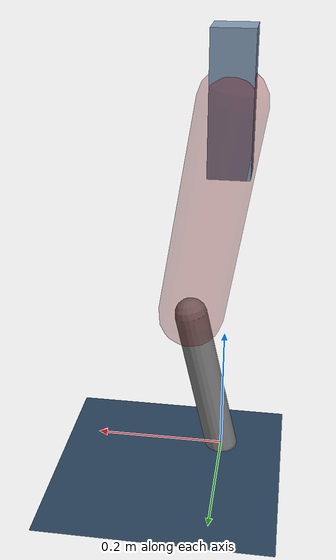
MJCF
<mujoco model="Hopper2D">
	<compiler inertiafromgeom="true" angle="radian" />
	<option timestep="0.001" integrator="implicit" cone="elliptic" solver="Newton" tolerance="1e-10" />

	<default>
		<geom contype="1" conaffinity="1" condim="3" friction="2 0.005 0.0001" solref="0.005 1" />
		<joint limited="true" damping="0.1" />
	</default>

	<asset>
		<texture name="skybox" type="skybox" builtin="gradient" rgb1=".4 .6 .8" rgb2="0 0 0" width="800" height="800" />
		<texture name="grid" type="2d" builtin="checker" rgb1=".1 .2 .3" rgb2=".2 .3 .4" width="300" height="300" mark="edge" markrgb=".2 .3 .4" />
		<material name="ground" texture="grid" texrepeat="1 1" texuniform="true" reflectance="0.1" />
		<material name="leg" rgba="0.5 0.6 0.7 1" />
	</asset>

	<worldbody>

		<geom name="floor" type="plane" size="5 5 0.25" material="ground" />

		<light directional="false" diffuse="0.8 0.8 0.8" specular="0.3 0.3 0.3" pos="0 0 2" dir="0 0 -1" />
		<light mode="targetbodycom" target="base" directional="false" diffuse="0.8 0.8 0.8" specular="0.3 0.3 0.3" pos="0 0 2" dir="0 0 -1" />

		<camera name="fixed" pos="0 -2 1" xyaxes="1 0 0 0 0 1" />
		<camera name="tracking" mode="trackcom" pos="0 -3 1" />

		<body name="root" pos="0 0 0.5529492701083534">
			<joint name="slide_x" type="slide" axis="1 0 0" range="-100 100" />
			<joint name="slide_z" type="slide" axis="0 0 1" range="0 10" />

			<body name="base" pos="0 0 0">
				<geom name="torso" type="box" size="0.03 0.03 0.1" mass="2.3" material="leg" />

				<body name="link1" pos="0 0 0" euler="0 1.411012801370733 0">
					<joint type="hinge" axis="0 -1 0" pos="0 0 0" name="hinge1" limited="true" range="-3.14 3.14" stiffness="0" damping="0.1" />
					<geom name="thigh" type="capsule" fromto="0 0 0 0.3273657248297154 0 0" size="0.05" rgba="0.5 0 0 0.3" mass="1.063524029523203" />

					<body name="link2" pos="0.3273657248297154 0 0" euler="0 0.3827163473705896 0">
						<joint type="hinge" axis="0 -1 0" pos="0 0 0" name="hinge2" limited="true" range="-3.14 3.14" stiffness="0" damping="0.1" />
						<geom name="shank" type="capsule" fromto="0 0 0 0.23558354527863806 0 0" size="0.025" mass="0.43062519075077427" />

					</body>
				</body>
			</body>
		</body>
	</worldbody>

	<actuator>
		<motor name="torque1" joint="hinge1" ctrlrange="-100.3607179479561 100.3607179479561" ctrllimited="true" gear="1" />
		<motor name="torque2" joint="hinge2" ctrlrange="-88.93050914390663 88.93050914390663" ctrllimited="true" gear="1" />
	</actuator>
</mujoco>
